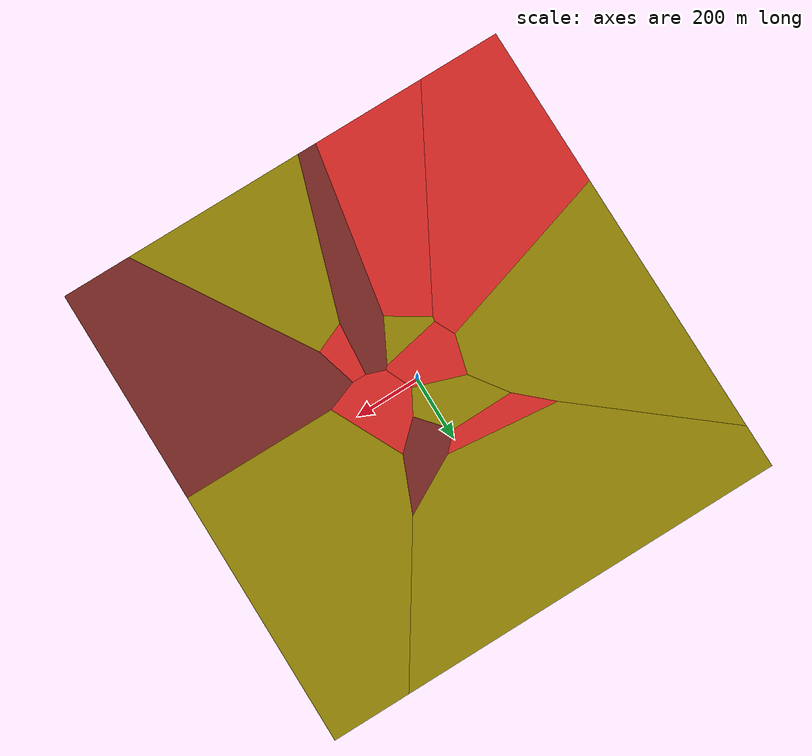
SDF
<?xml version="1.0" ?>
<sdf version="1.5">
  <world name="world_example">
    <physics name="ode_physics" default="0" type="ode">
      <gravity>0 0 -9.8066</gravity>
      <ode>
        <solver>
          <type>quick</type>
          <iters>50</iters>
          <sor>1.3</sor>
        </solver>
        <constraints>
          <cfm>10e-5</cfm>
          <erp>0.2</erp>
          <contact_max_correcting_vel>100</contact_max_correcting_vel>
          <contact_surface_layer>0.001</contact_surface_layer>
        </constraints>
      </ode>
      <max_step_size>0.004</max_step_size>
      <real_time_factor>1</real_time_factor>
      <real_time_update_rate>250</real_time_update_rate>
    </physics>

    <scene>
      <ambient>0.4 0.4 0.4 1</ambient>
      <background>0.7 0.7 0.7 1</background>
      <shadows>false</shadows>
    </scene>

    <light name="sun" type="directional">
      <cast_shadows>1</cast_shadows>
      <pose>0 0 1000 0.4 0.2 0</pose>
      <diffuse>1 1 1 1</diffuse>
      <specular>0.6 0.6 0.6 1</specular>
      <direction>0.1 0.1 -0.9</direction>
    </light>

                <model name="world_example_zone_0">
                    <static>true</static>
                    <pose>0 0 -0.500 0 0 0</pose>
                    <link name="link">
<collision name="col">

  <geometry>

                <mesh>
                <uri>model://worlds_library/world_example/meshes/world_example_zone_0.stl</uri>
                </mesh>
  </geometry>

  <max_contacts>10</max_contacts>

  <surface>
    <friction>

      <ode>
        <mu>0.9</mu>
        <mu2>0.9</mu2>
        <fdir1>1 0 0</fdir1>
        <slip1>0.0</slip1>
        <slip2>0.0</slip2>
      </ode>

      <torsional>
        <coefficient>0.03</coefficient>
        <use_patch_radius>false</use_patch_radius>
        <surface_radius>0.12</surface_radius>
        <ode><slip>0.0</slip></ode>
      </torsional>

    </friction>

    <bounce>
      <restitution_coefficient>0.0</restitution_coefficient>
      <threshold>0.1</threshold>
    </bounce>

    <contact>
      <ode>
        <kp>500000.0</kp>
        <kd>50.0</kd>
        <max_vel>0.01</max_vel>
        <min_depth>0.0</min_depth>
      </ode>
    </contact>

  </surface>
</collision>

<visual name="visual">
  <geometry>
                <mesh>
                <uri>model://worlds_library/world_example/meshes/world_example_zone_0.stl</uri>
                </mesh></geometry>
  <material>
    <diffuse>0.5771287035062422 0.5107603239830094 0.010428091490698121 1</diffuse>
    <ambient>0 0 0 0</ambient>
    <specular>0 0 0 1</specular>
    <emissive>0 0 0 1</emissive>
  </material>
</visual>
</link>
                </model>

                <model name="world_example_zone_1">
                    <static>true</static>
                    <pose>0 0 -0.500 0 0 0</pose>
                    <link name="link">
<collision name="col">

  <geometry>

                <mesh>
                <uri>model://worlds_library/world_example/meshes/world_example_zone_1.stl</uri>
                </mesh>
  </geometry>

  <max_contacts>10</max_contacts>

  <surface>
    <friction>

      <ode>
        <mu>0.9</mu>
        <mu2>0.9</mu2>
        <fdir1>1 0 0</fdir1>
        <slip1>0.0</slip1>
        <slip2>0.0</slip2>
      </ode>

      <torsional>
        <coefficient>0.03</coefficient>
        <use_patch_radius>false</use_patch_radius>
        <surface_radius>0.12</surface_radius>
        <ode><slip>0.0</slip></ode>
      </torsional>

    </friction>

    <bounce>
      <restitution_coefficient>0.0</restitution_coefficient>
      <threshold>0.1</threshold>
    </bounce>

    <contact>
      <ode>
        <kp>500000.0</kp>
        <kd>50.0</kd>
        <max_vel>0.01</max_vel>
        <min_depth>0.0</min_depth>
      </ode>
    </contact>

  </surface>
</collision>

<visual name="visual">
  <geometry>
                <mesh>
                <uri>model://worlds_library/world_example/meshes/world_example_zone_1.stl</uri>
                </mesh></geometry>
  <material>
    <diffuse>0.850949781774124 0.15797554534089886 0.14276918997286547 1</diffuse>
    <ambient>0 0 0 0</ambient>
    <specular>0 0 0 1</specular>
    <emissive>0 0 0 1</emissive>
  </material>
</visual>
</link>
                </model>

                <model name="world_example_zone_2">
                    <static>true</static>
                    <pose>0 0 -0.500 0 0 0</pose>
                    <link name="link">
<collision name="col">

  <geometry>

                <mesh>
                <uri>model://worlds_library/world_example/meshes/world_example_zone_2.stl</uri>
                </mesh>
  </geometry>

  <max_contacts>10</max_contacts>

  <surface>
    <friction>

      <ode>
        <mu>0.9</mu>
        <mu2>0.9</mu2>
        <fdir1>1 0 0</fdir1>
        <slip1>0.0</slip1>
        <slip2>0.0</slip2>
      </ode>

      <torsional>
        <coefficient>0.03</coefficient>
        <use_patch_radius>false</use_patch_radius>
        <surface_radius>0.12</surface_radius>
        <ode><slip>0.0</slip></ode>
      </torsional>

    </friction>

    <bounce>
      <restitution_coefficient>0.0</restitution_coefficient>
      <threshold>0.1</threshold>
    </bounce>

    <contact>
      <ode>
        <kp>500000.0</kp>
        <kd>50.0</kd>
        <max_vel>0.01</max_vel>
        <min_depth>0.0</min_depth>
      </ode>
    </contact>

  </surface>
</collision>

<visual name="visual">
  <geometry>
                <mesh>
                <uri>model://worlds_library/world_example/meshes/world_example_zone_2.stl</uri>
                </mesh></geometry>
  <material>
    <diffuse>0.850949781774124 0.15797554534089886 0.14276918997286547 1</diffuse>
    <ambient>0 0 0 0</ambient>
    <specular>0 0 0 1</specular>
    <emissive>0 0 0 1</emissive>
  </material>
</visual>
</link>
                </model>

                <model name="world_example_zone_3">
                    <static>true</static>
                    <pose>0 0 -0.500 0 0 0</pose>
                    <link name="link">
<collision name="col">

  <geometry>

                <mesh>
                <uri>model://worlds_library/world_example/meshes/world_example_zone_3.stl</uri>
                </mesh>
  </geometry>

  <max_contacts>10</max_contacts>

  <surface>
    <friction>

      <ode>
        <mu>0.9</mu>
        <mu2>0.9</mu2>
        <fdir1>1 0 0</fdir1>
        <slip1>0.0</slip1>
        <slip2>0.0</slip2>
      </ode>

      <torsional>
        <coefficient>0.03</coefficient>
        <use_patch_radius>false</use_patch_radius>
        <surface_radius>0.12</surface_radius>
        <ode><slip>0.0</slip></ode>
      </torsional>

    </friction>

    <bounce>
      <restitution_coefficient>0.0</restitution_coefficient>
      <threshold>0.1</threshold>
    </bounce>

    <contact>
      <ode>
        <kp>500000.0</kp>
        <kd>50.0</kd>
        <max_vel>0.01</max_vel>
        <min_depth>0.0</min_depth>
      </ode>
    </contact>

  </surface>
</collision>

<visual name="visual">
  <geometry>
                <mesh>
                <uri>model://worlds_library/world_example/meshes/world_example_zone_3.stl</uri>
                </mesh></geometry>
  <material>
    <diffuse>0.850949781774124 0.15797554534089886 0.14276918997286547 1</diffuse>
    <ambient>0 0 0 0</ambient>
    <specular>0 0 0 1</specular>
    <emissive>0 0 0 1</emissive>
  </material>
</visual>
</link>
                </model>

                <model name="world_example_zone_4">
                    <static>true</static>
                    <pose>0 0 -0.500 0 0 0</pose>
                    <link name="link">
<collision name="col">

  <geometry>

                <mesh>
                <uri>model://worlds_library/world_example/meshes/world_example_zone_4.stl</uri>
                </mesh>
  </geometry>

  <max_contacts>10</max_contacts>

  <surface>
    <friction>

      <ode>
        <mu>0.9</mu>
        <mu2>0.9</mu2>
        <fdir1>1 0 0</fdir1>
        <slip1>0.0</slip1>
        <slip2>0.0</slip2>
      </ode>

      <torsional>
        <coefficient>0.03</coefficient>
        <use_patch_radius>false</use_patch_radius>
        <surface_radius>0.12</surface_radius>
        <ode><slip>0.0</slip></ode>
      </torsional>

    </friction>

    <bounce>
      <restitution_coefficient>0.0</restitution_coefficient>
      <threshold>0.1</threshold>
    </bounce>

    <contact>
      <ode>
        <kp>500000.0</kp>
        <kd>50.0</kd>
        <max_vel>0.01</max_vel>
        <min_depth>0.0</min_depth>
      </ode>
    </contact>

  </surface>
</collision>

<visual name="visual">
  <geometry>
                <mesh>
                <uri>model://worlds_library/world_example/meshes/world_example_zone_4.stl</uri>
                </mesh></geometry>
  <material>
    <diffuse>0.5771287035062422 0.5107603239830094 0.010428091490698121 1</diffuse>
    <ambient>0 0 0 0</ambient>
    <specular>0 0 0 1</specular>
    <emissive>0 0 0 1</emissive>
  </material>
</visual>
</link>
                </model>

                <model name="world_example_zone_5">
                    <static>true</static>
                    <pose>0 0 -0.500 0 0 0</pose>
                    <link name="link">
<collision name="col">

  <geometry>

                <mesh>
                <uri>model://worlds_library/world_example/meshes/world_example_zone_5.stl</uri>
                </mesh>
  </geometry>

  <max_contacts>10</max_contacts>

  <surface>
    <friction>

      <ode>
        <mu>0.9</mu>
        <mu2>0.9</mu2>
        <fdir1>1 0 0</fdir1>
        <slip1>0.0</slip1>
        <slip2>0.0</slip2>
      </ode>

      <torsional>
        <coefficient>0.03</coefficient>
        <use_patch_radius>false</use_patch_radius>
        <surface_radius>0.12</surface_radius>
        <ode><slip>0.0</slip></ode>
      </torsional>

    </friction>

    <bounce>
      <restitution_coefficient>0.0</restitution_coefficient>
      <threshold>0.1</threshold>
    </bounce>

    <contact>
      <ode>
        <kp>500000.0</kp>
        <kd>50.0</kd>
        <max_vel>0.01</max_vel>
        <min_depth>0.0</min_depth>
      </ode>
    </contact>

  </surface>
</collision>

<visual name="visual">
  <geometry>
                <mesh>
                <uri>model://worlds_library/world_example/meshes/world_example_zone_5.stl</uri>
                </mesh></geometry>
  <material>
    <diffuse>0.850949781774124 0.15797554534089886 0.14276918997286547 1</diffuse>
    <ambient>0 0 0 0</ambient>
    <specular>0 0 0 1</specular>
    <emissive>0 0 0 1</emissive>
  </material>
</visual>
</link>
                </model>

                <model name="world_example_zone_6">
                    <static>true</static>
                    <pose>0 0 -0.500 0 0 0</pose>
                    <link name="link">
<collision name="col">

  <geometry>

                <mesh>
                <uri>model://worlds_library/world_example/meshes/world_example_zone_6.stl</uri>
                </mesh>
  </geometry>

  <max_contacts>10</max_contacts>

  <surface>
    <friction>

      <ode>
        <mu>0.9</mu>
        <mu2>0.9</mu2>
        <fdir1>1 0 0</fdir1>
        <slip1>0.0</slip1>
        <slip2>0.0</slip2>
      </ode>

      <torsional>
        <coefficient>0.03</coefficient>
        <use_patch_radius>false</use_patch_radius>
        <surface_radius>0.12</surface_radius>
        <ode><slip>0.0</slip></ode>
      </torsional>

    </friction>

    <bounce>
      <restitution_coefficient>0.0</restitution_coefficient>
      <threshold>0.1</threshold>
    </bounce>

    <contact>
      <ode>
        <kp>500000.0</kp>
        <kd>50.0</kd>
        <max_vel>0.01</max_vel>
        <min_depth>0.0</min_depth>
      </ode>
    </contact>

  </surface>
</collision>

<visual name="visual">
  <geometry>
                <mesh>
                <uri>model://worlds_library/world_example/meshes/world_example_zone_6.stl</uri>
                </mesh></geometry>
  <material>
    <diffuse>0.5771287035062422 0.5107603239830094 0.010428091490698121 1</diffuse>
    <ambient>0 0 0 0</ambient>
    <specular>0 0 0 1</specular>
    <emissive>0 0 0 1</emissive>
  </material>
</visual>
</link>
                </model>

                <model name="world_example_zone_7">
                    <static>true</static>
                    <pose>0 0 -0.500 0 0 0</pose>
                    <link name="link">
<collision name="col">

  <geometry>

                <mesh>
                <uri>model://worlds_library/world_example/meshes/world_example_zone_7.stl</uri>
                </mesh>
  </geometry>

  <max_contacts>10</max_contacts>

  <surface>
    <friction>

      <ode>
        <mu>0.9</mu>
        <mu2>0.9</mu2>
        <fdir1>1 0 0</fdir1>
        <slip1>0.0</slip1>
        <slip2>0.0</slip2>
      </ode>

      <torsional>
        <coefficient>0.03</coefficient>
        <use_patch_radius>false</use_patch_radius>
        <surface_radius>0.12</surface_radius>
        <ode><slip>0.0</slip></ode>
      </torsional>

    </friction>

    <bounce>
      <restitution_coefficient>0.0</restitution_coefficient>
      <threshold>0.1</threshold>
    </bounce>

    <contact>
      <ode>
        <kp>500000.0</kp>
        <kd>50.0</kd>
        <max_vel>0.01</max_vel>
        <min_depth>0.0</min_depth>
      </ode>
    </contact>

  </surface>
</collision>

<visual name="visual">
  <geometry>
                <mesh>
                <uri>model://worlds_library/world_example/meshes/world_example_zone_7.stl</uri>
                </mesh></geometry>
  <material>
    <diffuse>0.5771287035062422 0.5107603239830094 0.010428091490698121 1</diffuse>
    <ambient>0 0 0 0</ambient>
    <specular>0 0 0 1</specular>
    <emissive>0 0 0 1</emissive>
  </material>
</visual>
</link>
                </model>

                <model name="world_example_zone_8">
                    <static>true</static>
                    <pose>0 0 -0.500 0 0 0</pose>
                    <link name="link">
<collision name="col">

  <geometry>

                <mesh>
                <uri>model://worlds_library/world_example/meshes/world_example_zone_8.stl</uri>
                </mesh>
  </geometry>

  <max_contacts>10</max_contacts>

  <surface>
    <friction>

      <ode>
        <mu>0.15</mu>
        <mu2>0.15</mu2>
        <fdir1>1 0 0</fdir1>
        <slip1>0.03</slip1>
        <slip2>0.03</slip2>
      </ode>

      <torsional>
        <coefficient>0.005</coefficient>
        <use_patch_radius>false</use_patch_radius>
        <surface_radius>0.12</surface_radius>
        <ode><slip>0.01</slip></ode>
      </torsional>

    </friction>

    <bounce>
      <restitution_coefficient>0.0</restitution_coefficient>
      <threshold>0.1</threshold>
    </bounce>

    <contact>
      <ode>
        <kp>500000.0</kp>
        <kd>50.0</kd>
        <max_vel>0.01</max_vel>
        <min_depth>0.0</min_depth>
      </ode>
    </contact>

  </surface>
</collision>

<visual name="visual">
  <geometry>
                <mesh>
                <uri>model://worlds_library/world_example/meshes/world_example_zone_8.stl</uri>
                </mesh></geometry>
  <material>
    <diffuse>0.4705338711729794 0.14804068625887168 0.12694339496712825 1</diffuse>
    <ambient>0 0 0 0</ambient>
    <specular>0 0 0 1</specular>
    <emissive>0 0 0 1</emissive>
  </material>
</visual>
</link>
                </model>

                <model name="world_example_zone_9">
                    <static>true</static>
                    <pose>0 0 -0.500 0 0 0</pose>
                    <link name="link">
<collision name="col">

  <geometry>

                <mesh>
                <uri>model://worlds_library/world_example/meshes/world_example_zone_9.stl</uri>
                </mesh>
  </geometry>

  <max_contacts>10</max_contacts>

  <surface>
    <friction>

      <ode>
        <mu>0.9</mu>
        <mu2>0.9</mu2>
        <fdir1>1 0 0</fdir1>
        <slip1>0.0</slip1>
        <slip2>0.0</slip2>
      </ode>

      <torsional>
        <coefficient>0.03</coefficient>
        <use_patch_radius>false</use_patch_radius>
        <surface_radius>0.12</surface_radius>
        <ode><slip>0.0</slip></ode>
      </torsional>

    </friction>

    <bounce>
      <restitution_coefficient>0.0</restitution_coefficient>
      <threshold>0.1</threshold>
    </bounce>

    <contact>
      <ode>
        <kp>500000.0</kp>
        <kd>50.0</kd>
        <max_vel>0.01</max_vel>
        <min_depth>0.0</min_depth>
      </ode>
    </contact>

  </surface>
</collision>

<visual name="visual">
  <geometry>
                <mesh>
                <uri>model://worlds_library/world_example/meshes/world_example_zone_9.stl</uri>
                </mesh></geometry>
  <material>
    <diffuse>0.5771287035062422 0.5107603239830094 0.010428091490698121 1</diffuse>
    <ambient>0 0 0 0</ambient>
    <specular>0 0 0 1</specular>
    <emissive>0 0 0 1</emissive>
  </material>
</visual>
</link>
                </model>

                <model name="world_example_zone_10">
                    <static>true</static>
                    <pose>0 0 -0.500 0 0 0</pose>
                    <link name="link">
<collision name="col">

  <geometry>

                <mesh>
                <uri>model://worlds_library/world_example/meshes/world_example_zone_10.stl</uri>
                </mesh>
  </geometry>

  <max_contacts>10</max_contacts>

  <surface>
    <friction>

      <ode>
        <mu>0.15</mu>
        <mu2>0.15</mu2>
        <fdir1>1 0 0</fdir1>
        <slip1>0.03</slip1>
        <slip2>0.03</slip2>
      </ode>

      <torsional>
        <coefficient>0.005</coefficient>
        <use_patch_radius>false</use_patch_radius>
        <surface_radius>0.12</surface_radius>
        <ode><slip>0.01</slip></ode>
      </torsional>

    </friction>

    <bounce>
      <restitution_coefficient>0.0</restitution_coefficient>
      <threshold>0.1</threshold>
    </bounce>

    <contact>
      <ode>
        <kp>500000.0</kp>
        <kd>50.0</kd>
        <max_vel>0.01</max_vel>
        <min_depth>0.0</min_depth>
      </ode>
    </contact>

  </surface>
</collision>

<visual name="visual">
  <geometry>
                <mesh>
                <uri>model://worlds_library/world_example/meshes/world_example_zone_10.stl</uri>
                </mesh></geometry>
  <material>
    <diffuse>0.4705338711729794 0.14804068625887168 0.12694339496712825 1</diffuse>
    <ambient>0 0 0 0</ambient>
    <specular>0 0 0 1</specular>
    <emissive>0 0 0 1</emissive>
  </material>
</visual>
</link>
                </model>

                <model name="world_example_zone_11">
                    <static>true</static>
                    <pose>0 0 -0.500 0 0 0</pose>
                    <link name="link">
<collision name="col">

  <geometry>

                <mesh>
                <uri>model://worlds_library/world_example/meshes/world_example_zone_11.stl</uri>
                </mesh>
  </geometry>

  <max_contacts>10</max_contacts>

  <surface>
    <friction>

      <ode>
        <mu>0.9</mu>
        <mu2>0.9</mu2>
        <fdir1>1 0 0</fdir1>
        <slip1>0.0</slip1>
        <slip2>0.0</slip2>
      </ode>

      <torsional>
        <coefficient>0.03</coefficient>
        <use_patch_radius>false</use_patch_radius>
        <surface_radius>0.12</surface_radius>
        <ode><slip>0.0</slip></ode>
      </torsional>

    </friction>

    <bounce>
      <restitution_coefficient>0.0</restitution_coefficient>
      <threshold>0.1</threshold>
    </bounce>

    <contact>
      <ode>
        <kp>500000.0</kp>
        <kd>50.0</kd>
        <max_vel>0.01</max_vel>
        <min_depth>0.0</min_depth>
      </ode>
    </contact>

  </surface>
</collision>

<visual name="visual">
  <geometry>
                <mesh>
                <uri>model://worlds_library/world_example/meshes/world_example_zone_11.stl</uri>
                </mesh></geometry>
  <material>
    <diffuse>0.850949781774124 0.15797554534089886 0.14276918997286547 1</diffuse>
    <ambient>0 0 0 0</ambient>
    <specular>0 0 0 1</specular>
    <emissive>0 0 0 1</emissive>
  </material>
</visual>
</link>
                </model>

                <model name="world_example_zone_12">
                    <static>true</static>
                    <pose>0 0 -0.500 0 0 0</pose>
                    <link name="link">
<collision name="col">

  <geometry>

                <mesh>
                <uri>model://worlds_library/world_example/meshes/world_example_zone_12.stl</uri>
                </mesh>
  </geometry>

  <max_contacts>10</max_contacts>

  <surface>
    <friction>

      <ode>
        <mu>0.9</mu>
        <mu2>0.9</mu2>
        <fdir1>1 0 0</fdir1>
        <slip1>0.0</slip1>
        <slip2>0.0</slip2>
      </ode>

      <torsional>
        <coefficient>0.03</coefficient>
        <use_patch_radius>false</use_patch_radius>
        <surface_radius>0.12</surface_radius>
        <ode><slip>0.0</slip></ode>
      </torsional>

    </friction>

    <bounce>
      <restitution_coefficient>0.0</restitution_coefficient>
      <threshold>0.1</threshold>
    </bounce>

    <contact>
      <ode>
        <kp>500000.0</kp>
        <kd>50.0</kd>
        <max_vel>0.01</max_vel>
        <min_depth>0.0</min_depth>
      </ode>
    </contact>

  </surface>
</collision>

<visual name="visual">
  <geometry>
                <mesh>
                <uri>model://worlds_library/world_example/meshes/world_example_zone_12.stl</uri>
                </mesh></geometry>
  <material>
    <diffuse>0.5771287035062422 0.5107603239830094 0.010428091490698121 1</diffuse>
    <ambient>0 0 0 0</ambient>
    <specular>0 0 0 1</specular>
    <emissive>0 0 0 1</emissive>
  </material>
</visual>
</link>
                </model>

                <model name="world_example_zone_13">
                    <static>true</static>
                    <pose>0 0 -0.500 0 0 0</pose>
                    <link name="link">
<collision name="col">

  <geometry>

                <mesh>
                <uri>model://worlds_library/world_example/meshes/world_example_zone_13.stl</uri>
                </mesh>
  </geometry>

  <max_contacts>10</max_contacts>

  <surface>
    <friction>

      <ode>
        <mu>0.9</mu>
        <mu2>0.9</mu2>
        <fdir1>1 0 0</fdir1>
        <slip1>0.0</slip1>
        <slip2>0.0</slip2>
      </ode>

      <torsional>
        <coefficient>0.03</coefficient>
        <use_patch_radius>false</use_patch_radius>
        <surface_radius>0.12</surface_radius>
        <ode><slip>0.0</slip></ode>
      </torsional>

    </friction>

    <bounce>
      <restitution_coefficient>0.0</restitution_coefficient>
      <threshold>0.1</threshold>
    </bounce>

    <contact>
      <ode>
        <kp>500000.0</kp>
        <kd>50.0</kd>
        <max_vel>0.01</max_vel>
        <min_depth>0.0</min_depth>
      </ode>
    </contact>

  </surface>
</collision>

<visual name="visual">
  <geometry>
                <mesh>
                <uri>model://worlds_library/world_example/meshes/world_example_zone_13.stl</uri>
                </mesh></geometry>
  <material>
    <diffuse>0.850949781774124 0.15797554534089886 0.14276918997286547 1</diffuse>
    <ambient>0 0 0 0</ambient>
    <specular>0 0 0 1</specular>
    <emissive>0 0 0 1</emissive>
  </material>
</visual>
</link>
                </model>

                <model name="world_example_zone_14">
                    <static>true</static>
                    <pose>0 0 -0.500 0 0 0</pose>
                    <link name="link">
<collision name="col">

  <geometry>

                <mesh>
                <uri>model://worlds_library/world_example/meshes/world_example_zone_14.stl</uri>
                </mesh>
  </geometry>

  <max_contacts>10</max_contacts>

  <surface>
    <friction>

      <ode>
        <mu>0.15</mu>
        <mu2>0.15</mu2>
        <fdir1>1 0 0</fdir1>
        <slip1>0.03</slip1>
        <slip2>0.03</slip2>
      </ode>

      <torsional>
        <coefficient>0.005</coefficient>
        <use_patch_radius>false</use_patch_radius>
        <surface_radius>0.12</surface_radius>
        <ode><slip>0.01</slip></ode>
      </torsional>

    </friction>

    <bounce>
      <restitution_coefficient>0.0</restitution_coefficient>
      <threshold>0.1</threshold>
    </bounce>

    <contact>
      <ode>
        <kp>500000.0</kp>
        <kd>50.0</kd>
        <max_vel>0.01</max_vel>
        <min_depth>0.0</min_depth>
      </ode>
    </contact>

  </surface>
</collision>

<visual name="visual">
  <geometry>
                <mesh>
                <uri>model://worlds_library/world_example/meshes/world_example_zone_14.stl</uri>
                </mesh></geometry>
  <material>
    <diffuse>0.4705338711729794 0.14804068625887168 0.12694339496712825 1</diffuse>
    <ambient>0 0 0 0</ambient>
    <specular>0 0 0 1</specular>
    <emissive>0 0 0 1</emissive>
  </material>
</visual>
</link>
                </model>
  </world>
</sdf>
